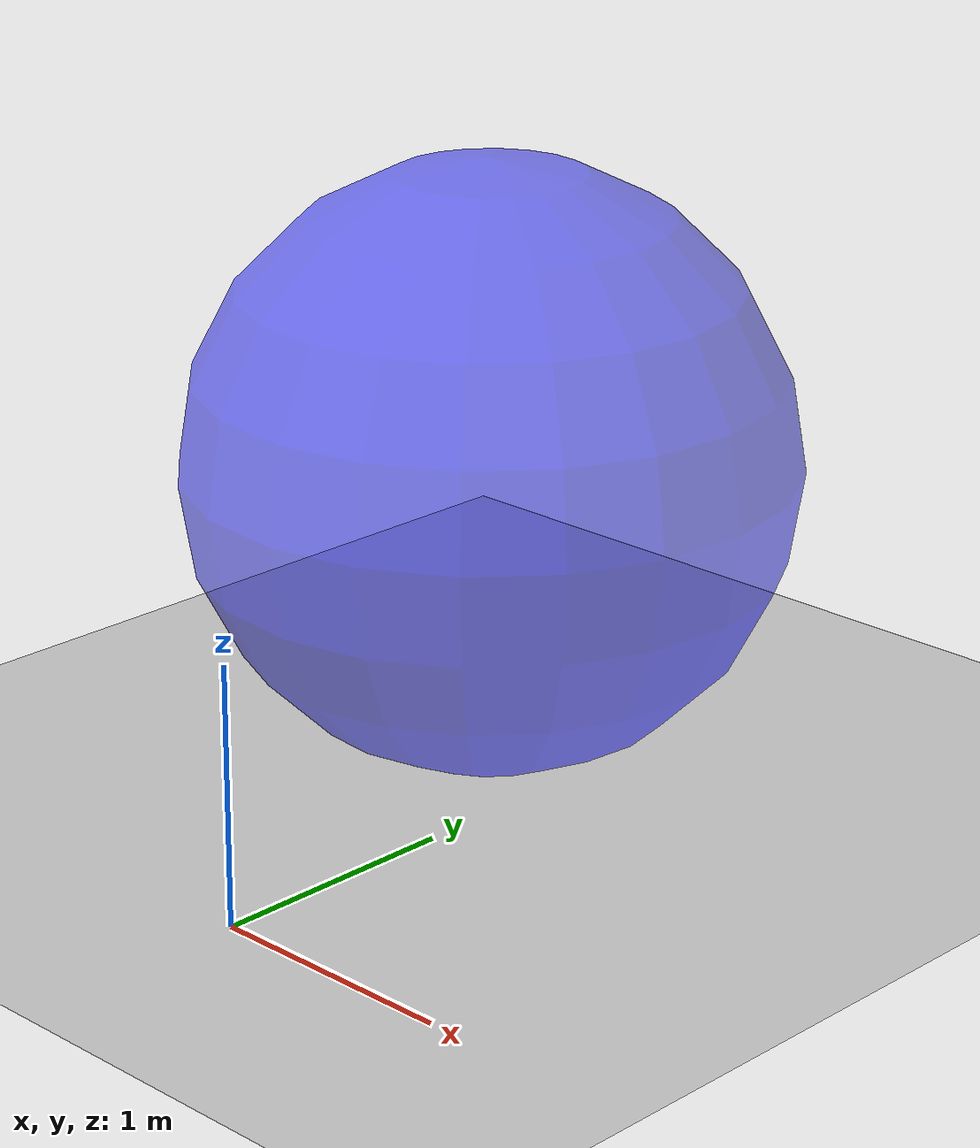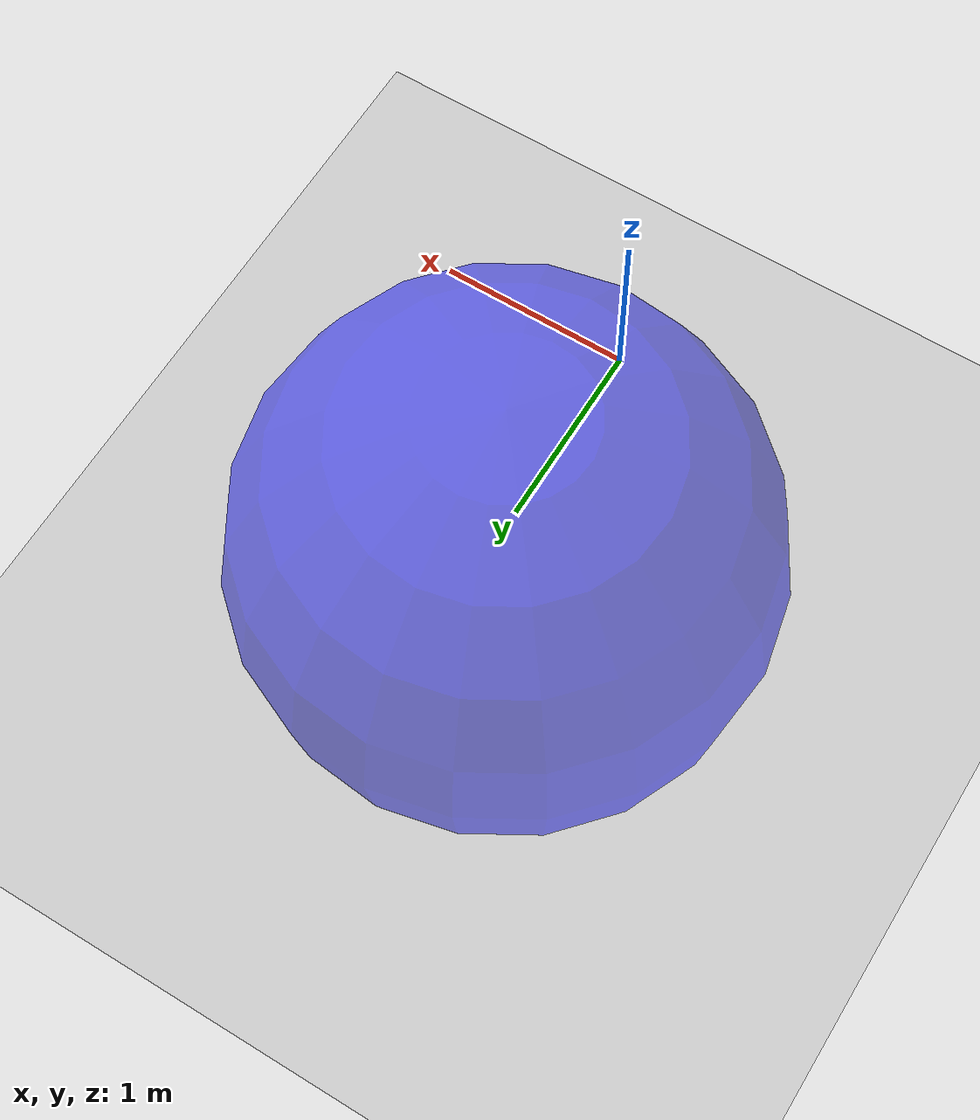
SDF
<?xml version="1.0" ?>
<sdf version="1.6">
    <world name ="sphere">
      <physics name="1ms" type="ignored">
      <max_step_size>0.001</max_step_size>
      <real_time_factor>1.0</real_time_factor>
      </physics>

      <plugin
          filename="libignition-gazebo-physics-system.so"
          name="ignition::gazebo::systems::Physics">
      </plugin>
      <plugin
          filename="libignition-gazebo-user-commands-system.so"
          name="ignition::gazebo::systems::UserCommands">
      </plugin>
      <plugin
          filename="libignition-gazebo-scene-broadcaster-system.so"
          name="ignition::gazebo::systems::SceneBroadcaster">
      </plugin>

      <light type="directional" name="sun">
        <cast_shadows>true</cast_shadows>
        <pose>0 0 10 0 0 0</pose>
        <diffuse>0.8 0.8 0.8 1</diffuse>
        <specular>0.2 0.2 0.2 1</specular>
        <attenuation>
          <range>1000</range>
          <constant>0.9</constant>
          <linear>0.01</linear>
          <quadratic>0.001</quadratic>
        </attenuation>
        <direction>-0.5 0.1 -0.9</direction>
      </light>

      <model name="ground_plane">
        <static>true</static>
        <link name="link">
          <collision name="collision">
            <geometry>
              <plane>
                <normal>0 0 1</normal>
              </plane>
            </geometry>
          </collision>
          <visual name="visual">
            <geometry>
              <plane>
                <normal>0 0 1</normal>
                <size>100 100</size>
              </plane>
            </geometry>
            <material>
              <ambient>0.8 0.8 0.8 1</ambient>
              <diffuse>0.8 0.8 0.8 1</diffuse>
              <specular>0.8 0.8 0.8 1</specular>
            </material>
          </visual>
        </link>
      </model>

      <model name="sphere">
           <pose>0 0 0 0 0 1</pose>
           <link name="sphere_link">
             <pose>0.7 0.7 0.7 0 0 0</pose>
             <inertial>
               <inertia>
                 <ixx>3</ixx>
                 <ixy>0</ixy>
                 <ixz>0</ixz>
                 <iyy>3</iyy>
                 <iyz>0</iyz>
                 <izz>3</izz>
               </inertia>
               <mass>3.0</mass>
             </inertial>
             <collision name="sphere_collision">
               <pose>0.51 0.51 0.51 0 0 0</pose>
               <geometry>
                 <sphere>
                   <radius>23.4</radius>
                 </sphere>
               </geometry>
             </collision>

             <visual name="sphere_visual">
               <pose>0.52 0.52 0.52 0 0 0</pose>
               <transparency>0.5</transparency>
               <cast_shadows>false</cast_shadows>
               <geometry>
                 <sphere>
                   <radius>1.2</radius>
                 </sphere>
               </geometry>
               <material>
                 <ambient>0 0 1 1</ambient>
                 <diffuse>0 0 1 1</diffuse>
                 <specular>0 0 1 1</specular>
               </material>
             </visual>
           </link>
      </model>
    </world>
</sdf>
